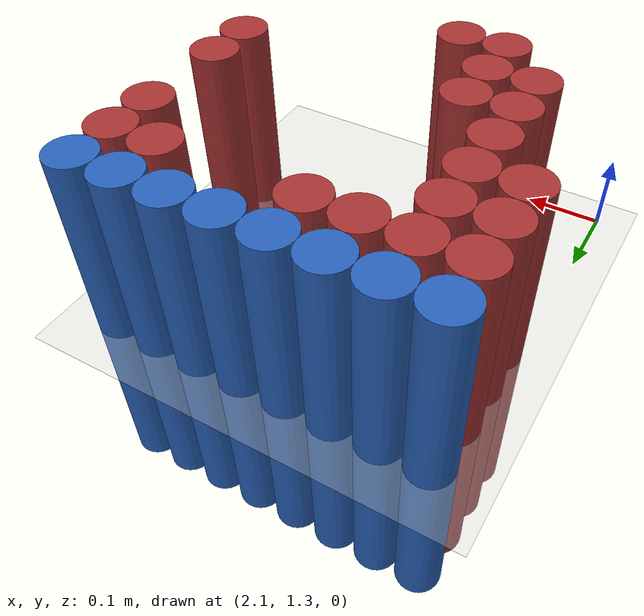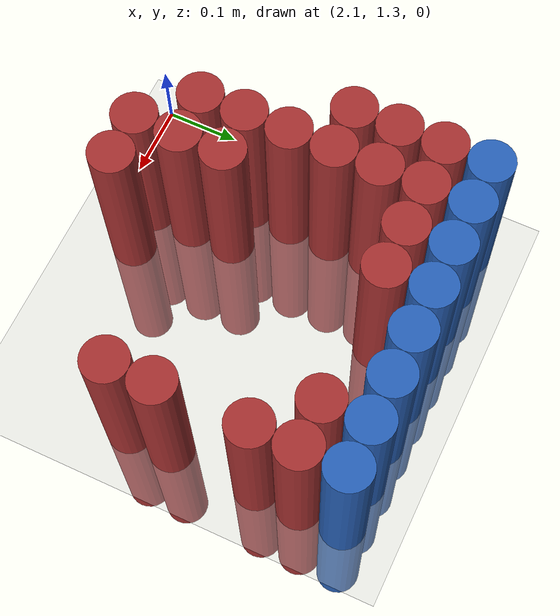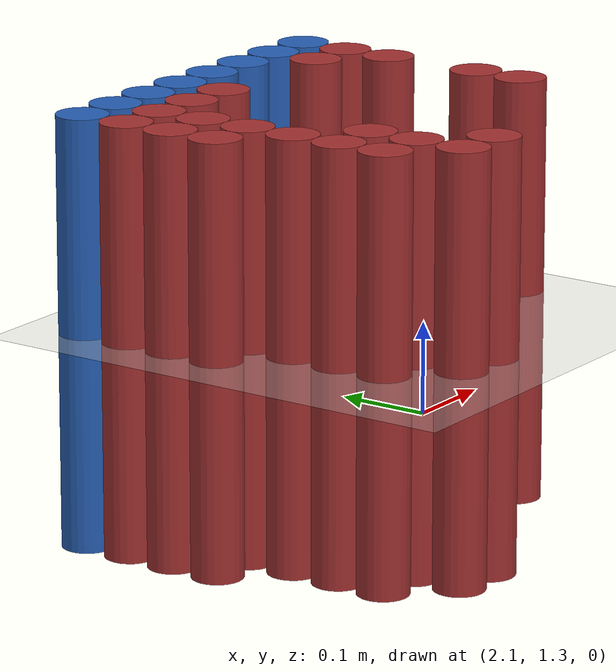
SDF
<sdf version="1.6">
 <world name="default">
  <model name="ground_plane">
   <static>1</static>
   <link name="link">
    <collision name="collision">
     <geometry><plane><normal>0 0 1</normal><size>100 100</size></plane></geometry>
     <surface><friction><ode><mu>100</mu><mu2>50</mu2></ode></friction></surface>
    </collision>
    <visual name="visual">
     <cast_shadows>0</cast_shadows>
     <geometry><plane><normal>0 0 1</normal><size>100 100</size></plane></geometry>
     <material>
      <script><uri>file://media/materials/scripts/gazebo.material</uri><name>Gazebo/Grey</name></script>
     </material>
    </visual>
   </link>
  </model>
  <model name="unit_cylinder_96">
   <static>1</static>
   <pose>2.130000 1.770000 0.000000 0.000000 0.000000 0.000000</pose>
   <link name="link">
    <inertial>
     <mass>1</mass>
     <inertia><ixx>0.145833</ixx><ixy>0</ixy><ixz>0</ixz><iyy>0.145833</iyy><iyz>0</iyz><izz>0.125</izz></inertia>
    </inertial>
    <collision name="collision">
     <geometry><cylinder><radius>0.030000</radius><length>0.5</length></cylinder></geometry>
    </collision>
    <visual name="visual">
     <geometry><cylinder><radius>0.030000</radius><length>0.5</length></cylinder></geometry>
     <material>
      <ambient>0.152000 0.379000 0.720000 1</ambient>
      <diffuse>0.152000 0.379000 0.720000 1</diffuse>
     </material>
     <material>
      <script><name>Gazebo/Grey</name><uri>file://media/materials/scripts/gazebo.material</uri></script>
     </material>
    </visual>
   </link>
  </model>
  <model name="unit_cylinder_97">
   <static>1</static>
   <pose>2.190000 1.770000 0.000000 0.000000 0.000000 0.000000</pose>
   <link name="link">
    <inertial>
     <mass>1</mass>
     <inertia><ixx>0.145833</ixx><ixy>0</ixy><ixz>0</ixz><iyy>0.145833</iyy><iyz>0</iyz><izz>0.125</izz></inertia>
    </inertial>
    <collision name="collision">
     <geometry><cylinder><radius>0.030000</radius><length>0.5</length></cylinder></geometry>
    </collision>
    <visual name="visual">
     <geometry><cylinder><radius>0.030000</radius><length>0.5</length></cylinder></geometry>
     <material>
      <ambient>0.152000 0.379000 0.720000 1</ambient>
      <diffuse>0.152000 0.379000 0.720000 1</diffuse>
     </material>
     <material>
      <script><name>Gazebo/Grey</name><uri>file://media/materials/scripts/gazebo.material</uri></script>
     </material>
    </visual>
   </link>
  </model>
  <model name="unit_cylinder_98">
   <static>1</static>
   <pose>2.250000 1.770000 0.000000 0.000000 0.000000 0.000000</pose>
   <link name="link">
    <inertial>
     <mass>1</mass>
     <inertia><ixx>0.145833</ixx><ixy>0</ixy><ixz>0</ixz><iyy>0.145833</iyy><iyz>0</iyz><izz>0.125</izz></inertia>
    </inertial>
    <collision name="collision">
     <geometry><cylinder><radius>0.030000</radius><length>0.5</length></cylinder></geometry>
    </collision>
    <visual name="visual">
     <geometry><cylinder><radius>0.030000</radius><length>0.5</length></cylinder></geometry>
     <material>
      <ambient>0.152000 0.379000 0.720000 1</ambient>
      <diffuse>0.152000 0.379000 0.720000 1</diffuse>
     </material>
     <material>
      <script><name>Gazebo/Grey</name><uri>file://media/materials/scripts/gazebo.material</uri></script>
     </material>
    </visual>
   </link>
  </model>
  <model name="unit_cylinder_99">
   <static>1</static>
   <pose>2.310000 1.770000 0.000000 0.000000 0.000000 0.000000</pose>
   <link name="link">
    <inertial>
     <mass>1</mass>
     <inertia><ixx>0.145833</ixx><ixy>0</ixy><ixz>0</ixz><iyy>0.145833</iyy><iyz>0</iyz><izz>0.125</izz></inertia>
    </inertial>
    <collision name="collision">
     <geometry><cylinder><radius>0.030000</radius><length>0.5</length></cylinder></geometry>
    </collision>
    <visual name="visual">
     <geometry><cylinder><radius>0.030000</radius><length>0.5</length></cylinder></geometry>
     <material>
      <ambient>0.152000 0.379000 0.720000 1</ambient>
      <diffuse>0.152000 0.379000 0.720000 1</diffuse>
     </material>
     <material>
      <script><name>Gazebo/Grey</name><uri>file://media/materials/scripts/gazebo.material</uri></script>
     </material>
    </visual>
   </link>
  </model>
  <model name="unit_cylinder_100">
   <static>1</static>
   <pose>2.370000 1.770000 0.000000 0.000000 0.000000 0.000000</pose>
   <link name="link">
    <inertial>
     <mass>1</mass>
     <inertia><ixx>0.145833</ixx><ixy>0</ixy><ixz>0</ixz><iyy>0.145833</iyy><iyz>0</iyz><izz>0.125</izz></inertia>
    </inertial>
    <collision name="collision">
     <geometry><cylinder><radius>0.030000</radius><length>0.5</length></cylinder></geometry>
    </collision>
    <visual name="visual">
     <geometry><cylinder><radius>0.030000</radius><length>0.5</length></cylinder></geometry>
     <material>
      <ambient>0.152000 0.379000 0.720000 1</ambient>
      <diffuse>0.152000 0.379000 0.720000 1</diffuse>
     </material>
     <material>
      <script><name>Gazebo/Grey</name><uri>file://media/materials/scripts/gazebo.material</uri></script>
     </material>
    </visual>
   </link>
  </model>
  <model name="unit_cylinder_101">
   <static>1</static>
   <pose>2.430000 1.770000 0.000000 0.000000 0.000000 0.000000</pose>
   <link name="link">
    <inertial>
     <mass>1</mass>
     <inertia><ixx>0.145833</ixx><ixy>0</ixy><ixz>0</ixz><iyy>0.145833</iyy><iyz>0</iyz><izz>0.125</izz></inertia>
    </inertial>
    <collision name="collision">
     <geometry><cylinder><radius>0.030000</radius><length>0.5</length></cylinder></geometry>
    </collision>
    <visual name="visual">
     <geometry><cylinder><radius>0.030000</radius><length>0.5</length></cylinder></geometry>
     <material>
      <ambient>0.152000 0.379000 0.720000 1</ambient>
      <diffuse>0.152000 0.379000 0.720000 1</diffuse>
     </material>
     <material>
      <script><name>Gazebo/Grey</name><uri>file://media/materials/scripts/gazebo.material</uri></script>
     </material>
    </visual>
   </link>
  </model>
  <model name="unit_cylinder_102">
   <static>1</static>
   <pose>2.490000 1.770000 0.000000 0.000000 0.000000 0.000000</pose>
   <link name="link">
    <inertial>
     <mass>1</mass>
     <inertia><ixx>0.145833</ixx><ixy>0</ixy><ixz>0</ixz><iyy>0.145833</iyy><iyz>0</iyz><izz>0.125</izz></inertia>
    </inertial>
    <collision name="collision">
     <geometry><cylinder><radius>0.030000</radius><length>0.5</length></cylinder></geometry>
    </collision>
    <visual name="visual">
     <geometry><cylinder><radius>0.030000</radius><length>0.5</length></cylinder></geometry>
     <material>
      <ambient>0.152000 0.379000 0.720000 1</ambient>
      <diffuse>0.152000 0.379000 0.720000 1</diffuse>
     </material>
     <material>
      <script><name>Gazebo/Grey</name><uri>file://media/materials/scripts/gazebo.material</uri></script>
     </material>
    </visual>
   </link>
  </model>
  <model name="unit_cylinder_103">
   <static>1</static>
   <pose>2.550000 1.770000 0.000000 0.000000 0.000000 0.000000</pose>
   <link name="link">
    <inertial>
     <mass>1</mass>
     <inertia><ixx>0.145833</ixx><ixy>0</ixy><ixz>0</ixz><iyy>0.145833</iyy><iyz>0</iyz><izz>0.125</izz></inertia>
    </inertial>
    <collision name="collision">
     <geometry><cylinder><radius>0.030000</radius><length>0.5</length></cylinder></geometry>
    </collision>
    <visual name="visual">
     <geometry><cylinder><radius>0.030000</radius><length>0.5</length></cylinder></geometry>
     <material>
      <ambient>0.152000 0.379000 0.720000 1</ambient>
      <diffuse>0.152000 0.379000 0.720000 1</diffuse>
     </material>
     <material>
      <script><name>Gazebo/Grey</name><uri>file://media/materials/scripts/gazebo.material</uri></script>
     </material>
    </visual>
   </link>
  </model>
  <model name="unit_cylinder_126">
   <static>1</static>
   <pose>2.130000 1.710000 0.000000 0.000000 0.000000 0.000000</pose>
   <link name="link">
    <inertial>
     <mass>1</mass>
     <inertia><ixx>0.145833</ixx><ixy>0</ixy><ixz>0</ixz><iyy>0.145833</iyy><iyz>0</iyz><izz>0.125</izz></inertia>
    </inertial>
    <collision name="collision">
     <geometry><cylinder><radius>0.030000</radius><length>0.5</length></cylinder></geometry>
    </collision>
    <visual name="visual">
     <geometry><cylinder><radius>0.030000</radius><length>0.5</length></cylinder></geometry>
     <material>
      <ambient>0.648000 0.192000 0.192000 1</ambient>
      <diffuse>0.648000 0.192000 0.192000 1</diffuse>
     </material>
     <material>
      <script><name>Gazebo/Grey</name><uri>file://media/materials/scripts/gazebo.material</uri></script>
     </material>
    </visual>
   </link>
  </model>
  <model name="unit_cylinder_127">
   <static>1</static>
   <pose>2.190000 1.710000 0.000000 0.000000 0.000000 0.000000</pose>
   <link name="link">
    <inertial>
     <mass>1</mass>
     <inertia><ixx>0.145833</ixx><ixy>0</ixy><ixz>0</ixz><iyy>0.145833</iyy><iyz>0</iyz><izz>0.125</izz></inertia>
    </inertial>
    <collision name="collision">
     <geometry><cylinder><radius>0.030000</radius><length>0.5</length></cylinder></geometry>
    </collision>
    <visual name="visual">
     <geometry><cylinder><radius>0.030000</radius><length>0.5</length></cylinder></geometry>
     <material>
      <ambient>0.648000 0.192000 0.192000 1</ambient>
      <diffuse>0.648000 0.192000 0.192000 1</diffuse>
     </material>
     <material>
      <script><name>Gazebo/Grey</name><uri>file://media/materials/scripts/gazebo.material</uri></script>
     </material>
    </visual>
   </link>
  </model>
  <model name="unit_cylinder_128">
   <static>1</static>
   <pose>2.250000 1.710000 0.000000 0.000000 0.000000 0.000000</pose>
   <link name="link">
    <inertial>
     <mass>1</mass>
     <inertia><ixx>0.145833</ixx><ixy>0</ixy><ixz>0</ixz><iyy>0.145833</iyy><iyz>0</iyz><izz>0.125</izz></inertia>
    </inertial>
    <collision name="collision">
     <geometry><cylinder><radius>0.030000</radius><length>0.5</length></cylinder></geometry>
    </collision>
    <visual name="visual">
     <geometry><cylinder><radius>0.030000</radius><length>0.5</length></cylinder></geometry>
     <material>
      <ambient>0.648000 0.192000 0.192000 1</ambient>
      <diffuse>0.648000 0.192000 0.192000 1</diffuse>
     </material>
     <material>
      <script><name>Gazebo/Grey</name><uri>file://media/materials/scripts/gazebo.material</uri></script>
     </material>
    </visual>
   </link>
  </model>
  <model name="unit_cylinder_129">
   <static>1</static>
   <pose>2.310000 1.710000 0.000000 0.000000 0.000000 0.000000</pose>
   <link name="link">
    <inertial>
     <mass>1</mass>
     <inertia><ixx>0.145833</ixx><ixy>0</ixy><ixz>0</ixz><iyy>0.145833</iyy><iyz>0</iyz><izz>0.125</izz></inertia>
    </inertial>
    <collision name="collision">
     <geometry><cylinder><radius>0.030000</radius><length>0.5</length></cylinder></geometry>
    </collision>
    <visual name="visual">
     <geometry><cylinder><radius>0.030000</radius><length>0.5</length></cylinder></geometry>
     <material>
      <ambient>0.648000 0.192000 0.192000 1</ambient>
      <diffuse>0.648000 0.192000 0.192000 1</diffuse>
     </material>
     <material>
      <script><name>Gazebo/Grey</name><uri>file://media/materials/scripts/gazebo.material</uri></script>
     </material>
    </visual>
   </link>
  </model>
  <model name="unit_cylinder_130">
   <static>1</static>
   <pose>2.490000 1.710000 0.000000 0.000000 0.000000 0.000000</pose>
   <link name="link">
    <inertial>
     <mass>1</mass>
     <inertia><ixx>0.145833</ixx><ixy>0</ixy><ixz>0</ixz><iyy>0.145833</iyy><iyz>0</iyz><izz>0.125</izz></inertia>
    </inertial>
    <collision name="collision">
     <geometry><cylinder><radius>0.030000</radius><length>0.5</length></cylinder></geometry>
    </collision>
    <visual name="visual">
     <geometry><cylinder><radius>0.030000</radius><length>0.5</length></cylinder></geometry>
     <material>
      <ambient>0.648000 0.192000 0.192000 1</ambient>
      <diffuse>0.648000 0.192000 0.192000 1</diffuse>
     </material>
     <material>
      <script><name>Gazebo/Grey</name><uri>file://media/materials/scripts/gazebo.material</uri></script>
     </material>
    </visual>
   </link>
  </model>
  <model name="unit_cylinder_131">
   <static>1</static>
   <pose>2.550000 1.710000 0.000000 0.000000 0.000000 0.000000</pose>
   <link name="link">
    <inertial>
     <mass>1</mass>
     <inertia><ixx>0.145833</ixx><ixy>0</ixy><ixz>0</ixz><iyy>0.145833</iyy><iyz>0</iyz><izz>0.125</izz></inertia>
    </inertial>
    <collision name="collision">
     <geometry><cylinder><radius>0.030000</radius><length>0.5</length></cylinder></geometry>
    </collision>
    <visual name="visual">
     <geometry><cylinder><radius>0.030000</radius><length>0.5</length></cylinder></geometry>
     <material>
      <ambient>0.648000 0.192000 0.192000 1</ambient>
      <diffuse>0.648000 0.192000 0.192000 1</diffuse>
     </material>
     <material>
      <script><name>Gazebo/Grey</name><uri>file://media/materials/scripts/gazebo.material</uri></script>
     </material>
    </visual>
   </link>
  </model>
  <model name="unit_cylinder_144">
   <static>1</static>
   <pose>2.130000 1.650000 0.000000 0.000000 0.000000 0.000000</pose>
   <link name="link">
    <inertial>
     <mass>1</mass>
     <inertia><ixx>0.145833</ixx><ixy>0</ixy><ixz>0</ixz><iyy>0.145833</iyy><iyz>0</iyz><izz>0.125</izz></inertia>
    </inertial>
    <collision name="collision">
     <geometry><cylinder><radius>0.030000</radius><length>0.5</length></cylinder></geometry>
    </collision>
    <visual name="visual">
     <geometry><cylinder><radius>0.030000</radius><length>0.5</length></cylinder></geometry>
     <material>
      <ambient>0.648000 0.192000 0.192000 1</ambient>
      <diffuse>0.648000 0.192000 0.192000 1</diffuse>
     </material>
     <material>
      <script><name>Gazebo/Grey</name><uri>file://media/materials/scripts/gazebo.material</uri></script>
     </material>
    </visual>
   </link>
  </model>
  <model name="unit_cylinder_145">
   <static>1</static>
   <pose>2.190000 1.650000 0.000000 0.000000 0.000000 0.000000</pose>
   <link name="link">
    <inertial>
     <mass>1</mass>
     <inertia><ixx>0.145833</ixx><ixy>0</ixy><ixz>0</ixz><iyy>0.145833</iyy><iyz>0</iyz><izz>0.125</izz></inertia>
    </inertial>
    <collision name="collision">
     <geometry><cylinder><radius>0.030000</radius><length>0.5</length></cylinder></geometry>
    </collision>
    <visual name="visual">
     <geometry><cylinder><radius>0.030000</radius><length>0.5</length></cylinder></geometry>
     <material>
      <ambient>0.648000 0.192000 0.192000 1</ambient>
      <diffuse>0.648000 0.192000 0.192000 1</diffuse>
     </material>
     <material>
      <script><name>Gazebo/Grey</name><uri>file://media/materials/scripts/gazebo.material</uri></script>
     </material>
    </visual>
   </link>
  </model>
  <model name="unit_cylinder_146">
   <static>1</static>
   <pose>2.550000 1.650000 0.000000 0.000000 0.000000 0.000000</pose>
   <link name="link">
    <inertial>
     <mass>1</mass>
     <inertia><ixx>0.145833</ixx><ixy>0</ixy><ixz>0</ixz><iyy>0.145833</iyy><iyz>0</iyz><izz>0.125</izz></inertia>
    </inertial>
    <collision name="collision">
     <geometry><cylinder><radius>0.030000</radius><length>0.5</length></cylinder></geometry>
    </collision>
    <visual name="visual">
     <geometry><cylinder><radius>0.030000</radius><length>0.5</length></cylinder></geometry>
     <material>
      <ambient>0.648000 0.192000 0.192000 1</ambient>
      <diffuse>0.648000 0.192000 0.192000 1</diffuse>
     </material>
     <material>
      <script><name>Gazebo/Grey</name><uri>file://media/materials/scripts/gazebo.material</uri></script>
     </material>
    </visual>
   </link>
  </model>
  <model name="unit_cylinder_157">
   <static>1</static>
   <pose>2.130000 1.590000 0.000000 0.000000 0.000000 0.000000</pose>
   <link name="link">
    <inertial>
     <mass>1</mass>
     <inertia><ixx>0.145833</ixx><ixy>0</ixy><ixz>0</ixz><iyy>0.145833</iyy><iyz>0</iyz><izz>0.125</izz></inertia>
    </inertial>
    <collision name="collision">
     <geometry><cylinder><radius>0.030000</radius><length>0.5</length></cylinder></geometry>
    </collision>
    <visual name="visual">
     <geometry><cylinder><radius>0.030000</radius><length>0.5</length></cylinder></geometry>
     <material>
      <ambient>0.648000 0.192000 0.192000 1</ambient>
      <diffuse>0.648000 0.192000 0.192000 1</diffuse>
     </material>
     <material>
      <script><name>Gazebo/Grey</name><uri>file://media/materials/scripts/gazebo.material</uri></script>
     </material>
    </visual>
   </link>
  </model>
  <model name="unit_cylinder_158">
   <static>1</static>
   <pose>2.190000 1.590000 0.000000 0.000000 0.000000 0.000000</pose>
   <link name="link">
    <inertial>
     <mass>1</mass>
     <inertia><ixx>0.145833</ixx><ixy>0</ixy><ixz>0</ixz><iyy>0.145833</iyy><iyz>0</iyz><izz>0.125</izz></inertia>
    </inertial>
    <collision name="collision">
     <geometry><cylinder><radius>0.030000</radius><length>0.5</length></cylinder></geometry>
    </collision>
    <visual name="visual">
     <geometry><cylinder><radius>0.030000</radius><length>0.5</length></cylinder></geometry>
     <material>
      <ambient>0.648000 0.192000 0.192000 1</ambient>
      <diffuse>0.648000 0.192000 0.192000 1</diffuse>
     </material>
     <material>
      <script><name>Gazebo/Grey</name><uri>file://media/materials/scripts/gazebo.material</uri></script>
     </material>
    </visual>
   </link>
  </model>
  <model name="unit_cylinder_166">
   <static>1</static>
   <pose>2.190000 1.530000 0.000000 0.000000 0.000000 0.000000</pose>
   <link name="link">
    <inertial>
     <mass>1</mass>
     <inertia><ixx>0.145833</ixx><ixy>0</ixy><ixz>0</ixz><iyy>0.145833</iyy><iyz>0</iyz><izz>0.125</izz></inertia>
    </inertial>
    <collision name="collision">
     <geometry><cylinder><radius>0.030000</radius><length>0.5</length></cylinder></geometry>
    </collision>
    <visual name="visual">
     <geometry><cylinder><radius>0.030000</radius><length>0.5</length></cylinder></geometry>
     <material>
      <ambient>0.648000 0.192000 0.192000 1</ambient>
      <diffuse>0.648000 0.192000 0.192000 1</diffuse>
     </material>
     <material>
      <script><name>Gazebo/Grey</name><uri>file://media/materials/scripts/gazebo.material</uri></script>
     </material>
    </visual>
   </link>
  </model>
  <model name="unit_cylinder_167">
   <static>1</static>
   <pose>2.550000 1.530000 0.000000 0.000000 0.000000 0.000000</pose>
   <link name="link">
    <inertial>
     <mass>1</mass>
     <inertia><ixx>0.145833</ixx><ixy>0</ixy><ixz>0</ixz><iyy>0.145833</iyy><iyz>0</iyz><izz>0.125</izz></inertia>
    </inertial>
    <collision name="collision">
     <geometry><cylinder><radius>0.030000</radius><length>0.5</length></cylinder></geometry>
    </collision>
    <visual name="visual">
     <geometry><cylinder><radius>0.030000</radius><length>0.5</length></cylinder></geometry>
     <material>
      <ambient>0.648000 0.192000 0.192000 1</ambient>
      <diffuse>0.648000 0.192000 0.192000 1</diffuse>
     </material>
     <material>
      <script><name>Gazebo/Grey</name><uri>file://media/materials/scripts/gazebo.material</uri></script>
     </material>
    </visual>
   </link>
  </model>
  <model name="unit_cylinder_177">
   <static>1</static>
   <pose>2.190000 1.470000 0.000000 0.000000 0.000000 0.000000</pose>
   <link name="link">
    <inertial>
     <mass>1</mass>
     <inertia><ixx>0.145833</ixx><ixy>0</ixy><ixz>0</ixz><iyy>0.145833</iyy><iyz>0</iyz><izz>0.125</izz></inertia>
    </inertial>
    <collision name="collision">
     <geometry><cylinder><radius>0.030000</radius><length>0.5</length></cylinder></geometry>
    </collision>
    <visual name="visual">
     <geometry><cylinder><radius>0.030000</radius><length>0.5</length></cylinder></geometry>
     <material>
      <ambient>0.648000 0.192000 0.192000 1</ambient>
      <diffuse>0.648000 0.192000 0.192000 1</diffuse>
     </material>
     <material>
      <script><name>Gazebo/Grey</name><uri>file://media/materials/scripts/gazebo.material</uri></script>
     </material>
    </visual>
   </link>
  </model>
  <model name="unit_cylinder_178">
   <static>1</static>
   <pose>2.250000 1.470000 0.000000 0.000000 0.000000 0.000000</pose>
   <link name="link">
    <inertial>
     <mass>1</mass>
     <inertia><ixx>0.145833</ixx><ixy>0</ixy><ixz>0</ixz><iyy>0.145833</iyy><iyz>0</iyz><izz>0.125</izz></inertia>
    </inertial>
    <collision name="collision">
     <geometry><cylinder><radius>0.030000</radius><length>0.5</length></cylinder></geometry>
    </collision>
    <visual name="visual">
     <geometry><cylinder><radius>0.030000</radius><length>0.5</length></cylinder></geometry>
     <material>
      <ambient>0.648000 0.192000 0.192000 1</ambient>
      <diffuse>0.648000 0.192000 0.192000 1</diffuse>
     </material>
     <material>
      <script><name>Gazebo/Grey</name><uri>file://media/materials/scripts/gazebo.material</uri></script>
     </material>
    </visual>
   </link>
  </model>
  <model name="unit_cylinder_179">
   <static>1</static>
   <pose>2.550000 1.470000 0.000000 0.000000 0.000000 0.000000</pose>
   <link name="link">
    <inertial>
     <mass>1</mass>
     <inertia><ixx>0.145833</ixx><ixy>0</ixy><ixz>0</ixz><iyy>0.145833</iyy><iyz>0</iyz><izz>0.125</izz></inertia>
    </inertial>
    <collision name="collision">
     <geometry><cylinder><radius>0.030000</radius><length>0.5</length></cylinder></geometry>
    </collision>
    <visual name="visual">
     <geometry><cylinder><radius>0.030000</radius><length>0.5</length></cylinder></geometry>
     <material>
      <ambient>0.648000 0.192000 0.192000 1</ambient>
      <diffuse>0.648000 0.192000 0.192000 1</diffuse>
     </material>
     <material>
      <script><name>Gazebo/Grey</name><uri>file://media/materials/scripts/gazebo.material</uri></script>
     </material>
    </visual>
   </link>
  </model>
  <model name="unit_cylinder_187">
   <static>1</static>
   <pose>2.190000 1.410000 0.000000 0.000000 0.000000 0.000000</pose>
   <link name="link">
    <inertial>
     <mass>1</mass>
     <inertia><ixx>0.145833</ixx><ixy>0</ixy><ixz>0</ixz><iyy>0.145833</iyy><iyz>0</iyz><izz>0.125</izz></inertia>
    </inertial>
    <collision name="collision">
     <geometry><cylinder><radius>0.030000</radius><length>0.5</length></cylinder></geometry>
    </collision>
    <visual name="visual">
     <geometry><cylinder><radius>0.030000</radius><length>0.5</length></cylinder></geometry>
     <material>
      <ambient>0.648000 0.192000 0.192000 1</ambient>
      <diffuse>0.648000 0.192000 0.192000 1</diffuse>
     </material>
     <material>
      <script><name>Gazebo/Grey</name><uri>file://media/materials/scripts/gazebo.material</uri></script>
     </material>
    </visual>
   </link>
  </model>
  <model name="unit_cylinder_188">
   <static>1</static>
   <pose>2.250000 1.410000 0.000000 0.000000 0.000000 0.000000</pose>
   <link name="link">
    <inertial>
     <mass>1</mass>
     <inertia><ixx>0.145833</ixx><ixy>0</ixy><ixz>0</ixz><iyy>0.145833</iyy><iyz>0</iyz><izz>0.125</izz></inertia>
    </inertial>
    <collision name="collision">
     <geometry><cylinder><radius>0.030000</radius><length>0.5</length></cylinder></geometry>
    </collision>
    <visual name="visual">
     <geometry><cylinder><radius>0.030000</radius><length>0.5</length></cylinder></geometry>
     <material>
      <ambient>0.648000 0.192000 0.192000 1</ambient>
      <diffuse>0.648000 0.192000 0.192000 1</diffuse>
     </material>
     <material>
      <script><name>Gazebo/Grey</name><uri>file://media/materials/scripts/gazebo.material</uri></script>
     </material>
    </visual>
   </link>
  </model>
  <model name="unit_cylinder_192">
   <static>1</static>
   <pose>2.250000 1.350000 0.000000 0.000000 0.000000 0.000000</pose>
   <link name="link">
    <inertial>
     <mass>1</mass>
     <inertia><ixx>0.145833</ixx><ixy>0</ixy><ixz>0</ixz><iyy>0.145833</iyy><iyz>0</iyz><izz>0.125</izz></inertia>
    </inertial>
    <collision name="collision">
     <geometry><cylinder><radius>0.030000</radius><length>0.5</length></cylinder></geometry>
    </collision>
    <visual name="visual">
     <geometry><cylinder><radius>0.030000</radius><length>0.5</length></cylinder></geometry>
     <material>
      <ambient>0.648000 0.192000 0.192000 1</ambient>
      <diffuse>0.648000 0.192000 0.192000 1</diffuse>
     </material>
     <material>
      <script><name>Gazebo/Grey</name><uri>file://media/materials/scripts/gazebo.material</uri></script>
     </material>
    </visual>
   </link>
  </model>
  <model name="unit_cylinder_193">
   <static>1</static>
   <pose>2.310000 1.350000 0.000000 0.000000 0.000000 0.000000</pose>
   <link name="link">
    <inertial>
     <mass>1</mass>
     <inertia><ixx>0.145833</ixx><ixy>0</ixy><ixz>0</ixz><iyy>0.145833</iyy><iyz>0</iyz><izz>0.125</izz></inertia>
    </inertial>
    <collision name="collision">
     <geometry><cylinder><radius>0.030000</radius><length>0.5</length></cylinder></geometry>
    </collision>
    <visual name="visual">
     <geometry><cylinder><radius>0.030000</radius><length>0.5</length></cylinder></geometry>
     <material>
      <ambient>0.648000 0.192000 0.192000 1</ambient>
      <diffuse>0.648000 0.192000 0.192000 1</diffuse>
     </material>
     <material>
      <script><name>Gazebo/Grey</name><uri>file://media/materials/scripts/gazebo.material</uri></script>
     </material>
    </visual>
   </link>
  </model>
 </world>
</sdf>
